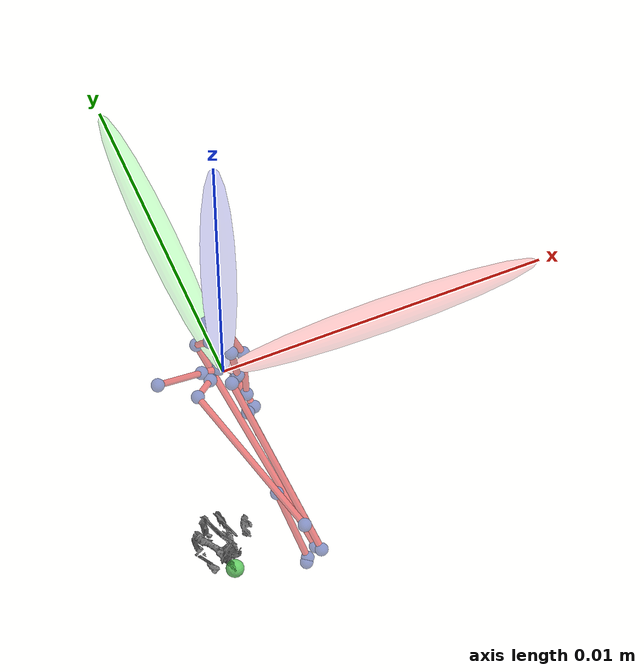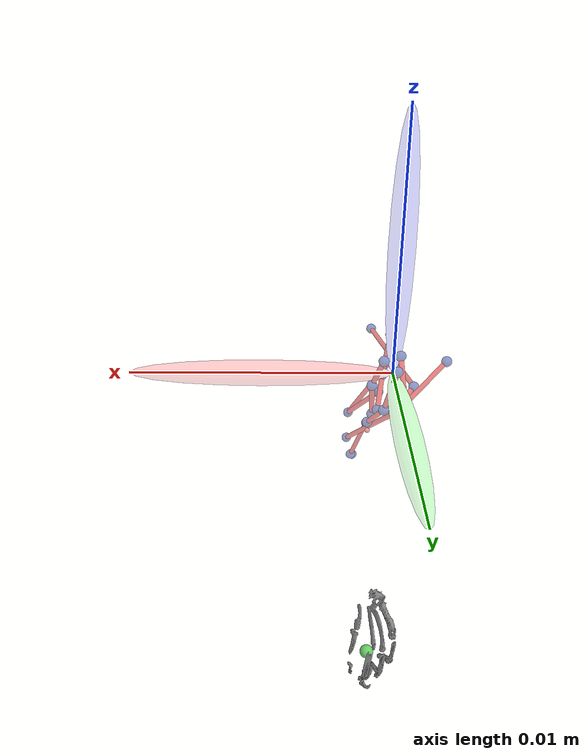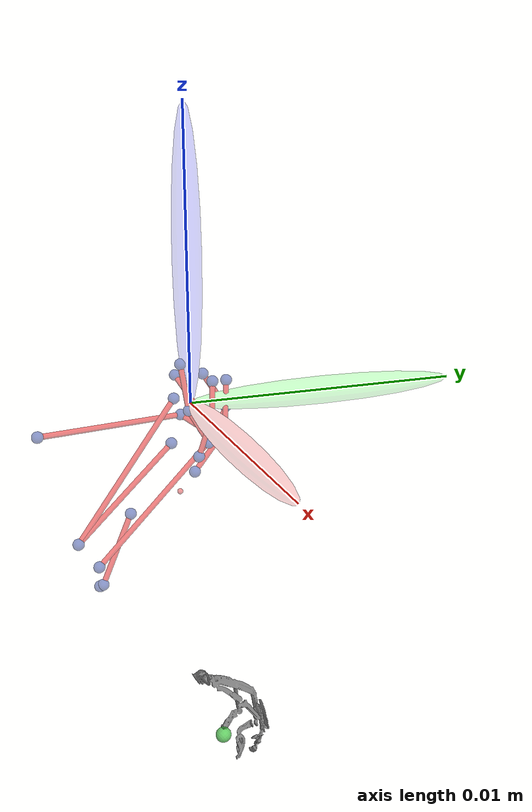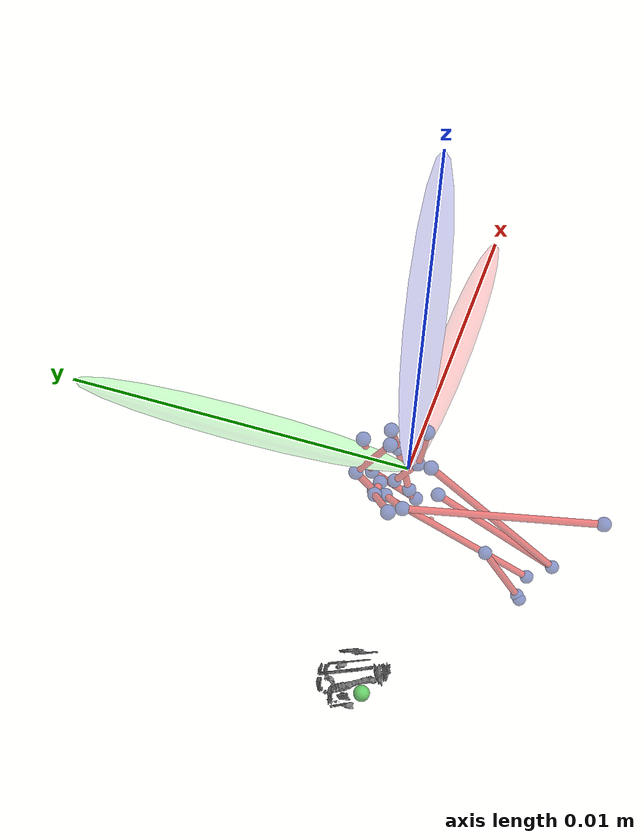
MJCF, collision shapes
<?xml version="1.0" encoding="utf-8"?>
<mujoco model="mouse">
	<compiler angle="degree">
		<lengthrange mode="muscle" timestep="0"/>
	</compiler>
	<option integrator="RK4" timestep="0.001" solver="CG" iterations="30" ls_iterations="30"></option>
	<default>
	<joint limited="true" solreflimit="0.01 1" solimplimit="0.99 0.9999 0"  armature="4e-8" damping="1e-5" stiffness="1e-12"/>
	<muscle ctrllimited="true" ctrlrange="0 1"/>
	</default>
	<size njmax="1000" nconmax="400" nkey="1" nuser_jnt="1"/>

	<visual>
		<scale framelength="0.5" framewidth="0.01"/>
		<global offheight="512"/>
	</visual>

	<asset>
		<material name="target" rgba="0.59999999999999998 0.29999999999999999 0.29999999999999999 0.29999999999999999"/>
		<texture type="skybox" builtin="gradient" rgb1="1 1 1" rgb2="0.6 0.8 1" width="256" height="1536"/>
		<texture name="grid" type="2d" builtin="checker" width="512" height="512" rgb1=".1 .2 .3" rgb2=".2 .3 .4"/>
		<material name="grid" texture="grid" texrepeat="1 1" texuniform="true" reflectance=".2"/>
		<mesh file="assets/Bone_Scapula_right_v3.stl"/>
		<mesh file="assets/Bone_Humerus_right_v3.stl"/>
		<mesh file="assets/Bone_Clavicle_right_v3.stl"/>
		<mesh file="assets/Bone_Ulna_right_v3.stl"/>
		<mesh file="assets/Bone_Radius_right_v3.stl"/>
		<mesh file="assets/Bone_Segments_Hand_fixed.stl"/>

	</asset>
	<!--This stuff can all be left alone-->
	<worldbody>
		<light directional="true"/>
		<body name="ground" euler="0 0 0">
			<camera name="my_camera" pos="0.04 .004 0.037" fovy="20" quat="0.6532815 0.2705981 0.2705981 0.6532815"/>
			<camera name="close-profile" pos="0.04 .004 0.037" fovy="20" quat="0.6532815 0.2705981 0.2705981 0.6532815"/>
			<geom type="ellipsoid" size=".0005" rgba="1 0 0 .1" fromto="0 0 0 .01 0 0" contype="0" conaffinity="0"/>
			<geom type="ellipsoid" size=".0005" rgba="0 1 0 .1" fromto="0 0 0 0 .01 0" contype="0" conaffinity="0"/>
			<geom type="ellipsoid" size=".0005" rgba="0 0 1 .1" fromto="0 0 0 0 0 .01" contype="0" conaffinity="0"/>

			<!-- Shoulder translational base: allows XYZ shoulder translation -->
			<body name="shoulder_base" pos="0 0 0" euler="0 0 0">
				<!-- In the shoulder_base body, replace these joints: -->
				<joint name="sh_ty" type="slide" axis="0 1 0" range="-0.002 0.002" damping="0.5" stiffness="1" springref="0"/>
				<joint name="sh_tz" type="slide" axis="0 0 1" range="-0.001 0.001" damping="0.5" stiffness="1" springref="0"/>

				<!--SOB Clavicle-->
				<body name="clavicle" pos="0 0 0" euler="0 0 0">
					<!--Mesh Geom-->
					<geom type="mesh" mesh="Bone_Clavicle_right_v3" pos="0 0 0.0005" contype="0" conaffinity="0"/>

					<!--Muscle Attachment-->
					<!--Pec Clavicular Head-->
					<site name="Pec_C_Origin" pos="-0.002 0 0.0005" rgba=".1 .2 .6 .5" size="0.0002"/>
					<!--Anterior Deltoid-->
					<site name="AD_Origin" pos="-0.000 0.0013 0.0007" rgba=".1 .2 .6 .5" size="0.0002"/>

					<!--SOB Scapula-->
					<body name="scapula" pos="-0.0001 -0.0001 0.0005" euler="-30 -15 0">
						<!--Mesh Geom-->
						<geom type="mesh" mesh="Bone_Scapula_right_v3" pos="0.0 0.0 0.0" contype="0" conaffinity="0"/>

						<!-- TRACKING SITE: Shoulder/Clavicle landmark -->

						<!--Muscle Attachement-->
						<!--Latissimus Dorsi-->
						<site name="Lat_Origin" pos="-0.0005 -0.004 -0.0035" rgba=".1 .2 .6 .5" size="0.0002"/>
						<!--Posterior Deltoid-->
						<site name="PD_Origin" pos="0.0004 -0.0007 0.0006" rgba=".1 .2 .6 .5" size="0.0002"/>
						<!--Middle Deltoid-->
						<site name="MD_Origin" pos="0.0007 0.0005 0.0005" rgba=".1 .2 .6 .5" size="0.0002"/>

						<!--Triceps Lateral Head-->
						<site name="Triceps_Long_Origin" pos="0 -0.0003 -0.0005" rgba=".1 .2 .6 .5" size="0.0002"/>
						<!--Biceps Long Head-->
						<site name="Biceps_Long_Origin" pos=".0001 0.0003 0.0007" rgba=".1 .2 .6 .5" size="0.0002"/>

						<!--SOB Humerus-->
						<body name="humerus" pos="0 0.0007 -0.0002" euler="-15 0 0">
							<!-- Glenohumeral (aka shoulder) Joint-->
							<inertial pos="-0.0005 0.0003 -0.004" mass="0.0001258" diaginertia="3e-8 3e-8 3e-8"/>

							<!--Mesh Geom-->
							<site name="Biceps_Short_Origin" pos="0.0 0.0013 -0.0029" rgba=".9 .2 .2 .5" size="0.0001"/>
							<geom type="mesh" mesh="Bone_Humerus_right_v3" pos="0.0 0.0 0.0" contype="0" conaffinity="0"/>

							<joint name="sh_elv" type="hinge" pos="0 0 0" axis="0 1 0" range="-70 0" limited="true"/>
							<!-- Extension Joint: Yaw around Z-axis -->
							<joint name="sh_rotation" type="hinge" pos="0 0 0" axis="0 0 1" range="-70 40" limited="true"/>
							<!-- Rotation Joint: Roll around X-axis -->
							<joint name="sh_extension" type="hinge" pos="0 0 0" axis="1 0 0" range="-25 89" limited="true"/>

							<!--Attachement-->
							<!--Pec Clavicular Head-->
							<site name="Pec_C_P2" pos="-0.0005 0.0009 -0.0003" rgba=".1 .2 .6 .5" size="0.0002"/>
							<site name="Pec_C_Insertion" pos="-0.000 0.001 -0.0005" rgba=".1 .2 .6 .5" size="0.0002"/>

							<!--Latissimus Dorsi-->
							<site name="Lat_P2" pos="-0.001 0.000 -0.0006" rgba=".1 .2 .6 .5" size="0.0002"/>
							<site name="Lat_Insertion" pos="-0.0004 0.0008 -0.0006" rgba=".1 .2 .6 .5" size="0.0002"/>

							<!--Anterior Deltoid-->
							<site name="AD_P2" pos="0.0003 0.0012 -0.0003" rgba=".1 .2 .6 .5" size="0.0002"/>
							<site name="AD_Insertion" pos="0.0003 0.0012 -0.0021" rgba=".1 .2 .6 .5" size="0.0002"/>

							<!--Posterior Deltoid-->
							<site name="PD_P2" pos="0.0003 -0.0003 -0.0006" rgba=".1 .2 .6 .5" size="0.0002"/>
							<site name="PD_Insertion" pos="0.0003 0.001 -0.001" rgba=".1 .2 .6 .5" size="0.0002"/>

							<!--Middle Deltoid-->
							<site name="MD_P2" pos="0.0008 0.0003 -0.0003" rgba=".1 .2 .6 .5" size="0.0002"/>
							<site name="MD_Insertion" pos="0.0003 0.001 -0.0016" rgba=".1 .2 .6 .5" size="0.0002"/>

							<!--Triceps Lateral Head-->
							<site name="Triceps_Lateral_Origin" pos="0.000 -0.000 -0.0018" rgba=".1 .2 .6 .5" size="0.0002"/>

							<!--Brachialis-->
							<site name="Brachialis_Origin" pos="-0.0005 0.0005 -0.0045" rgba=".1 .2 .6 .5" size="0.0002"/>

							<!--Biceps Long Head-->
							<site name="Biceps_Long_P2" pos="-0.0002 0.0009 0.0005" rgba=".1 .2 .6 .5" size="0.0002"/>
							<site name="Biceps_Long_P3" pos="-0.0002 0.0012 -0.0005" rgba=".1 .2 .6 .5" size="0.0002"/>

							<!--SOB Ulna-->
							<body name="ulna" pos="-0.0005 0.0003 -0.0068" euler="-15 0 0">
								<!--Mesh Geom-->
								<geom type="mesh" mesh="Bone_Ulna_right_v3" pos="0.0 0.0 0.0" contype="0" conaffinity="0"/>

								<!-- TRACKING SITE: Elbow joint center -->

								<!-- Elbow Joint -->
								<joint name="elbow" pos="0 0 0" axis="1 0 0" range="-80 90" limited="true"/>
								<inertial pos="-0.0009 0.004 0.0005" mass="0.0001258" diaginertia="3e-8 3e-8 3e-8"/>

								<!--Attachement-->
								<!--Triceps Lateral Head-->
								<site name="Triceps_Long_Insertion" pos="0.0002 -0.0008 0.0002" rgba=".1 .2 .6 .5" size="0.0002"/>

								<!--Triceps Lateral Head-->
								<site name="Triceps_Lateral_Insertion" pos="0.0002 -0.0008 0.0002" rgba=".1 .2 .6 .5" size="0.0002"/>

								<!--Brachialis-->
								<site name="Brachialis_Insertion" pos="-0.0002 0.001 0.0001" rgba=".1 .2 .6 .5" size="0.0002"/>

								<site name="Biceps_Short_Insertion" pos="-0.0003 0.001 0.0" rgba=".1 .2 .6 .5" size="0.0002"/>

								<!--SOB Radius-->
								<body name="radius" pos="0.00035 0.0002 0.0002" euler="0 0 0">
									<!--Mesh Geom-->
									<geom type="mesh" mesh="Bone_Radius_right_v3" pos="0.0 0.0 0.0" contype="0" conaffinity="0"/>

									<!--Attachement-->
									<!--Biceps Long Head-->
									<site name="Biceps_Long_Insertion" pos="-0.0002 0.0001 0.0001" rgba=".1 .2 .6 .5" size="0.0002"/>
								</body>

								<body name="wrist_body" pos="-0.002 0.0065 0.0005" euler="0 0 0">
									<!-- TRACKING SITE: Wrist/Hand endpoint -->
									<geom name="wrist_marker" type="sphere" size="0.0003" pos="0.0 0.003 0.0" contype="0" conaffinity="0" rgba="0.3 0.8 0.3 0.8"/>
									<geom name="hand_mesh_geom" type="mesh" mesh="Bone_Segments_Hand_fixed" pos="0 0 0"/>
									<inertial pos="0.0 0.0 0.0" mass="0.00071" diaginertia="7e-08 7e-08 7e-08"/>
								</body>
							</body>
						</body>
					</body>
				</body> <!-- clavicle -->
			</body> <!-- shoulder_base -->
			<!--EOB Ground-->
		</body> <!-- ground -->
	</worldbody>

	<tendon>
		<!--Shoulder Muscles-->
		<!--Pectoralis Major Clavicular Head (shoulder internal rotator + adductor(?) + flexor(?))-->
		<spatial width=".0001" rgba=".9 0 0 .5" name="Pec_C">
			<site site="Pec_C_Insertion"/>
			<site site="Pec_C_P2"/>
			<site site="Pec_C_Origin"/>
		</spatial>

		<!--Latissimus Dorsi (shoulder internal rotator + adductor(?) + extensor(?))-->
		<spatial width=".0001" rgba=".9 0 0 .5" name="Lat">
			<site site="Lat_Insertion"/>
			<site site="Lat_P2"/>
			<site site="Lat_Origin"/>
		</spatial>

		<!--Anterior Deltoid (shoulder flexor + internal rotator)-->
		<spatial width=".0001" rgba=".9 0 0 .5" name="AD">
			<site site="AD_Insertion"/>
			<site site="AD_P2"/>
			<site site="AD_Origin"/>
		</spatial>

		<!--Posterior Deltoid (shoulder extensor + external rotator)-->
		<spatial width=".0001" rgba=".9 0 0 .5" name="PD">
			<site site="PD_Insertion"/>
			<site site="PD_P2"/>
			<site site="PD_Origin"/>
		</spatial>

		<!--Middle Deltoid (shoulder abductor)-->
		<spatial width=".0001" rgba=".9 0 0 .5" name="MD">
			<site site="MD_Insertion"/>
			<site site="MD_P2"/>
			<site site="MD_Origin"/>
		</spatial>

		<!-- NEW: Supraspinatus (shoulder abductor / initiator) -->

		<!--Elbow Muscles-->
		<!--Triceps Lateral Head (mono-articular elbow extensor)-->
		<spatial width=".0001" rgba=".9 0 0 .5" name="Triceps_Lateral">
			<site site="Triceps_Lateral_Insertion"/>
			<site site="Triceps_Lateral_Origin"/>
		</spatial>

		<!--Triceps Long Head (bi-articular shoulder and elbow extensor)-->
		<spatial width=".0001" rgba=".9 0 0 .5" name="Triceps_Long">
			<site site="Triceps_Long_Insertion"/>
			<site site="Triceps_Long_Origin"/>
		</spatial>

		<!--Brachialis (mono-articular elbow flexor)-->
		<spatial width=".0001" rgba=".9 0 0 .5" name="Brachialis">
			<site site="Brachialis_Insertion"/>
			<site site="Brachialis_Origin"/>
		</spatial>

		<!--Biceps Long Head (bi-articular shoulder and elbow flexor)-->
		<spatial width=".0001" rgba=".9 0 0 .5" name="Biceps_Long">
			<site site="Biceps_Long_Insertion"/>
			<site site="Biceps_Long_P3"/>
			<site site="Biceps_Long_P2"/>
			<site site="Biceps_Long_Origin"/>
		</spatial>

	</tendon>

	<actuator>
		<!--Muscle operating range ("range") was adjusted for each joint such that 1) optimal muscle length falls within the minimum and maximum muscle lengths determined by Mujoco & 2) tendon length is positive-->
		<!--Shoulder muscles-->
		<muscle name="Pec_C" tendon="Pec_C" force=".8" vmax="20" range="0.5 1.2"/>
		<muscle name="Lat" tendon="Lat" force=".8" vmax="20" range="0.75 1.05"/>
		<muscle name="PD" tendon="PD" force=".7" vmax="20" range="0.6 1.1"/>
		<muscle name="AD" tendon="AD" force=".7" vmax="20" range="0.7 1.1"/>
		<muscle name="MD" tendon="MD" force=".7" vmax="20" range="0.8 1.2"/>

		<!--Elbow muscles-->
		<muscle name="Triceps_Lateral" tendon="Triceps_Lateral" force=".4" vmax="20" range="0.82 1.05"/>
		<muscle name="Triceps_Long" tendon="Triceps_Long" force=".6" vmax="20" range="0.7 1.1"/>
		<muscle name="Brachialis" tendon="Brachialis" force=".4" vmax="20" range="0.7 1.2"/>
		<muscle name="Biceps_Long" tendon="Biceps_Long" force=".35" vmax="20" range="0.7 1.05"/>

		<!-- Torque/force motors for shoulder translation -->
		<!-- Simple joint motors for shoulder translation -->
		<!-- Shoulder translational position servos -->
		<!-- Shoulder translational position servos -->
		<!-- Direct force control for shoulder translation -->
		<motor name="sh_ty_motor" joint="sh_ty" ctrlrange="-0.02 0.02" gear="1"/>
		<motor name="sh_tz_motor" joint="sh_tz" ctrlrange="-0.02 0.02" gear="1"/>

	</actuator>

	<sensor>
		<!-- Muscle forces -->

		<!-- Tendon lengths -->

		<!-- Tendon velocities -->

		<!-- Joint positions -->
	</sensor>

</mujoco>
